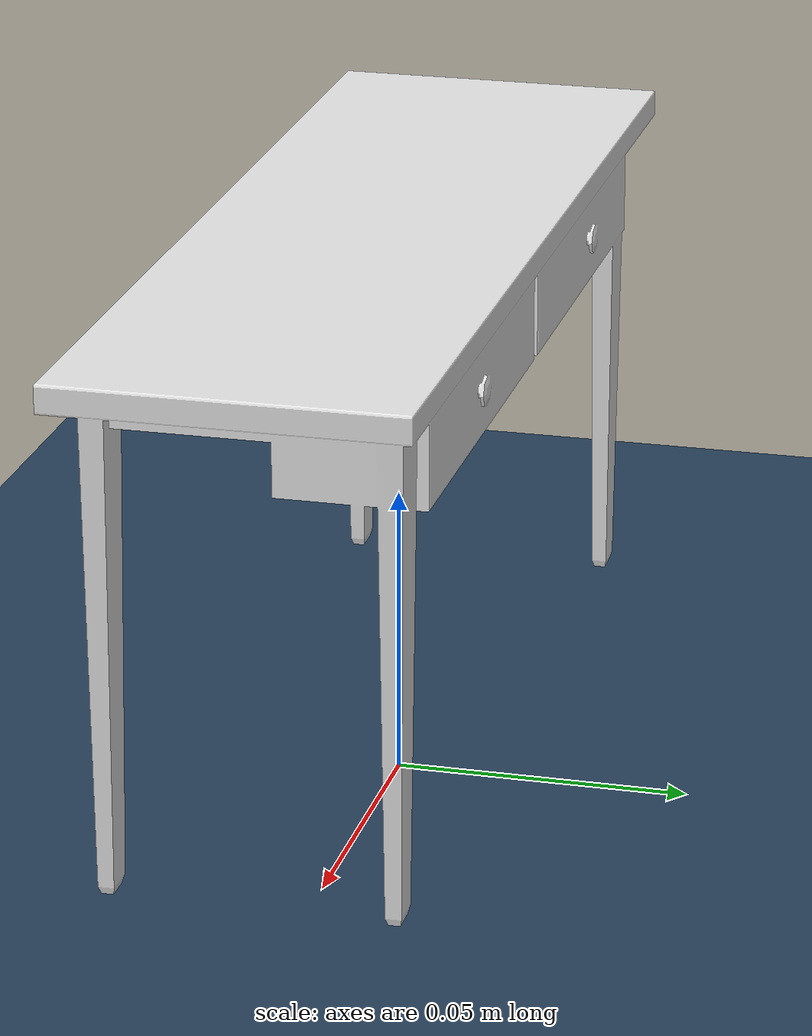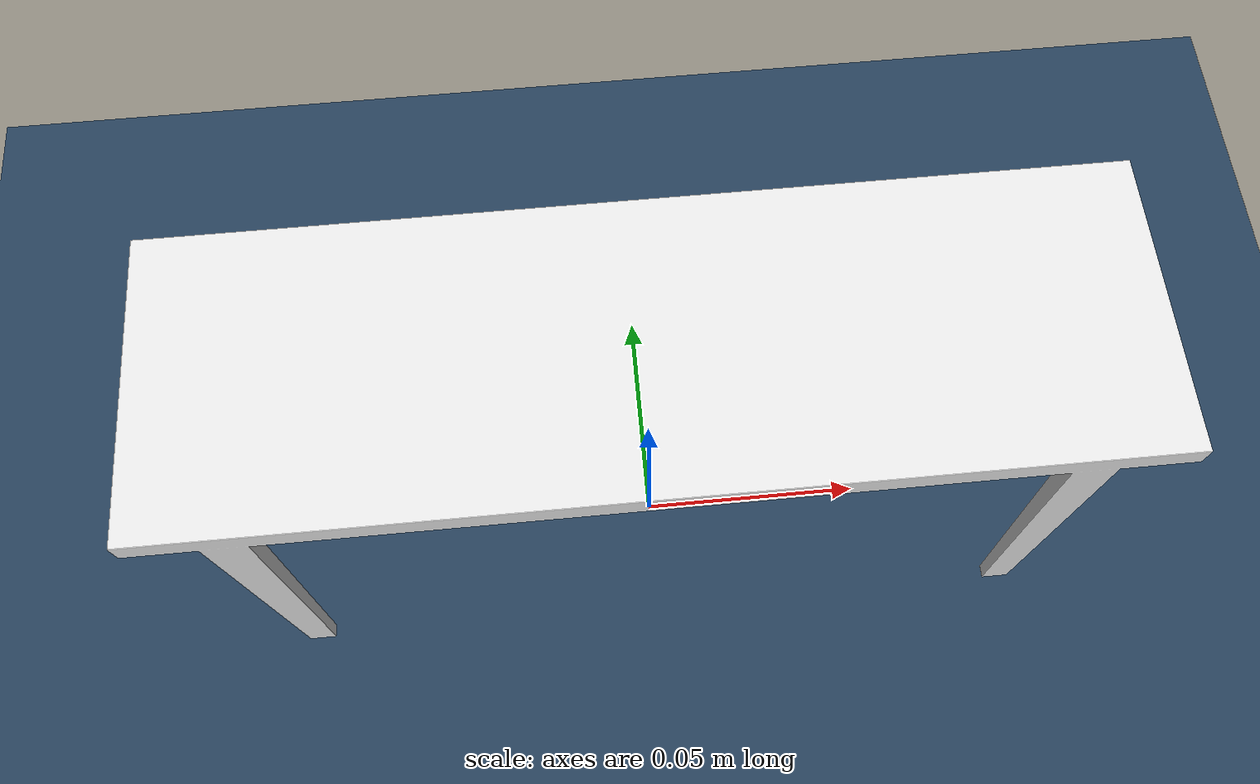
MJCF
<mujoco model="office_walls_scaled">
  <compiler angle="radian" meshdir="3d escritorio/walls_only/"/>

  <visual>
    <headlight diffuse="0.6 0.6 0.6" ambient="0.3 0.3 0.3" specular="0 0 0"/>
    <rgba haze="0.15 0.25 0.35 1"/>
    <global azimuth="-130" elevation="-20"/>
  </visual>

  <default>
    <default class="visual">
      <geom group="2" type="mesh" contype="0" conaffinity="0"/>
    </default>
    <default class="collision">
      <geom group="3" type="mesh"/>
    </default>
  </default>

  <asset>
    <texture type="skybox" builtin="gradient" rgb1="0.3 0.5 0.7" rgb2="0 0 0" width="512" height="3072"/>
    <texture type="2d" name="groundplane" builtin="checker" mark="edge" rgb1="0.2 0.3 0.4" rgb2="0.1 0.2 0.3"
      markrgb="0.8 0.8 0.8" width="300" height="300"/>
    <material name="groundplane" texture="groundplane" texuniform="true" texrepeat="5 5" reflectance="0.2"/>
    <material name="wall" rgba="0.9 0.9 0.9 1" specular="0.1"/>

    <!-- Meshes das paredes -->
    <mesh file="walls_only.obj" scale="0.001 0.001 0.001"/>
    <mesh file="walls_only_collision_0.obj" scale="0.001 0.001 0.001"/>
    <mesh file="walls_only_collision_1.obj" scale="0.001 0.001 0.001"/>
    <mesh file="walls_only_collision_2.obj" scale="0.001 0.001 0.001"/>
    <mesh file="walls_only_collision_3.obj" scale="0.001 0.001 0.001"/>
    <mesh file="walls_only_collision_4.obj" scale="0.001 0.001 0.001"/>
    <mesh file="walls_only_collision_5.obj" scale="0.001 0.001 0.001"/>
    <mesh file="walls_only_collision_6.obj" scale="0.001 0.001 0.001"/>
    <mesh file="walls_only_collision_7.obj" scale="0.001 0.001 0.001"/>
    <mesh file="walls_only_collision_8.obj" scale="0.001 0.001 0.001"/>
    <mesh file="walls_only_collision_9.obj" scale="0.001 0.001 0.001"/>
    <mesh file="walls_only_collision_10.obj" scale="0.001 0.001 0.001"/>
    <mesh file="walls_only_collision_11.obj" scale="0.001 0.001 0.001"/>
    <mesh file="walls_only_collision_12.obj" scale="0.001 0.001 0.001"/>
    <mesh file="walls_only_collision_13.obj" scale="0.001 0.001 0.001"/>
    <mesh file="walls_only_collision_14.obj" scale="0.001 0.001 0.001"/>
    <mesh file="walls_only_collision_15.obj" scale="0.001 0.001 0.001"/>
  </asset>

  <worldbody>
    <!-- Luz adicional -->
    <light pos="0 0 3" dir="0 0 -1" directional="true"/>

    <!-- Chão -->
    <geom name="floor" size="10 10 0.01" type="plane" material="groundplane"/>

    <!-- Paredes com escala correta e reposicionadas -->
    <body name="walls" pos="-0.636 1.325 0">
      <geom mesh="walls_only" class="visual" material="wall"/>
      <!-- Geometrias de colisão -->
      <geom mesh="walls_only_collision_0" class="collision" rgba="0.9 0.9 0.9 0.3"/>
      <geom mesh="walls_only_collision_1" class="collision" rgba="0.9 0.9 0.9 0.3"/>
      <geom mesh="walls_only_collision_2" class="collision" rgba="0.9 0.9 0.9 0.3"/>
      <geom mesh="walls_only_collision_3" class="collision" rgba="0.9 0.9 0.9 0.3"/>
      <geom mesh="walls_only_collision_4" class="collision" rgba="0.9 0.9 0.9 0.3"/>
      <geom mesh="walls_only_collision_5" class="collision" rgba="0.9 0.9 0.9 0.3"/>
      <geom mesh="walls_only_collision_6" class="collision" rgba="0.9 0.9 0.9 0.3"/>
      <geom mesh="walls_only_collision_7" class="collision" rgba="0.9 0.9 0.9 0.3"/>
      <geom mesh="walls_only_collision_8" class="collision" rgba="0.9 0.9 0.9 0.3"/>
      <geom mesh="walls_only_collision_9" class="collision" rgba="0.9 0.9 0.9 0.3"/>
      <geom mesh="walls_only_collision_10" class="collision" rgba="0.9 0.9 0.9 0.3"/>
      <geom mesh="walls_only_collision_11" class="collision" rgba="0.9 0.9 0.9 0.3"/>
      <geom mesh="walls_only_collision_12" class="collision" rgba="0.9 0.9 0.9 0.3"/>
      <geom mesh="walls_only_collision_13" class="collision" rgba="0.9 0.9 0.9 0.3"/>
      <geom mesh="walls_only_collision_14" class="collision" rgba="0.9 0.9 0.9 0.3"/>
      <geom mesh="walls_only_collision_15" class="collision" rgba="0.9 0.9 0.9 0.3"/>
    </body>
  </worldbody>

  <!-- Câmera personalizada -->
  <statistic center="0 0 0.5" extent="2"/>
</mujoco>
